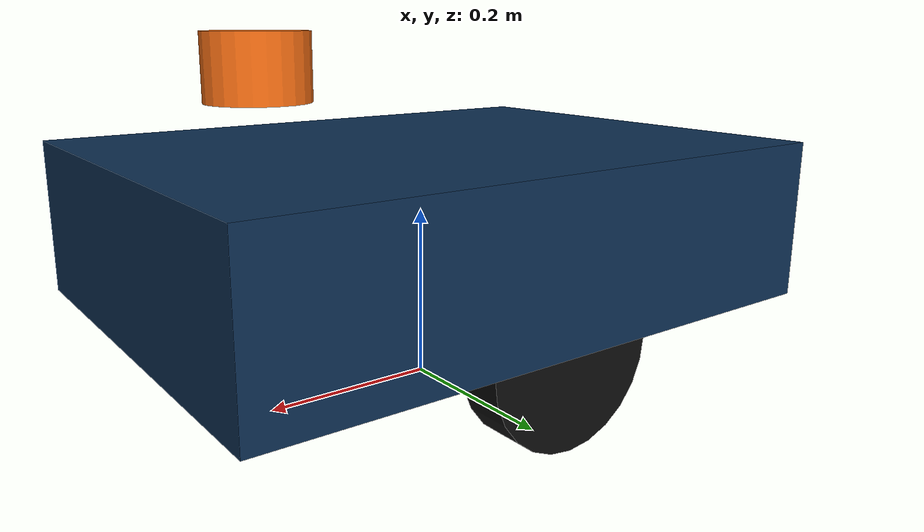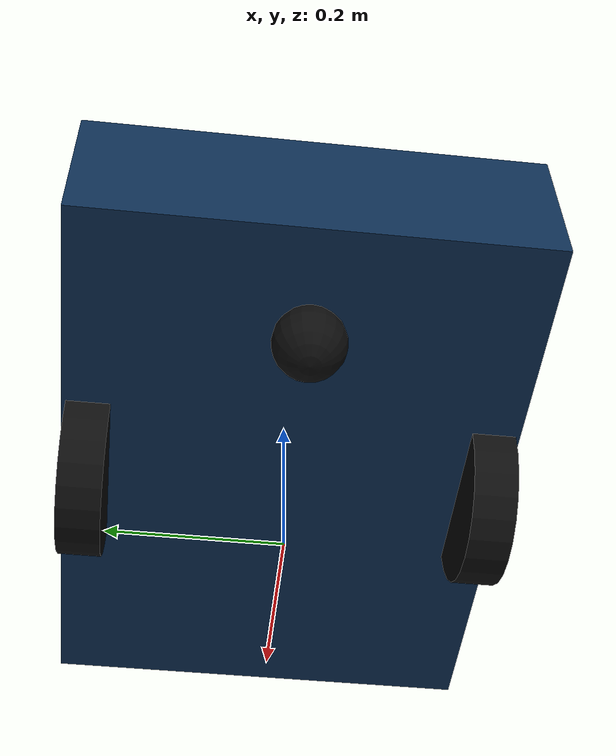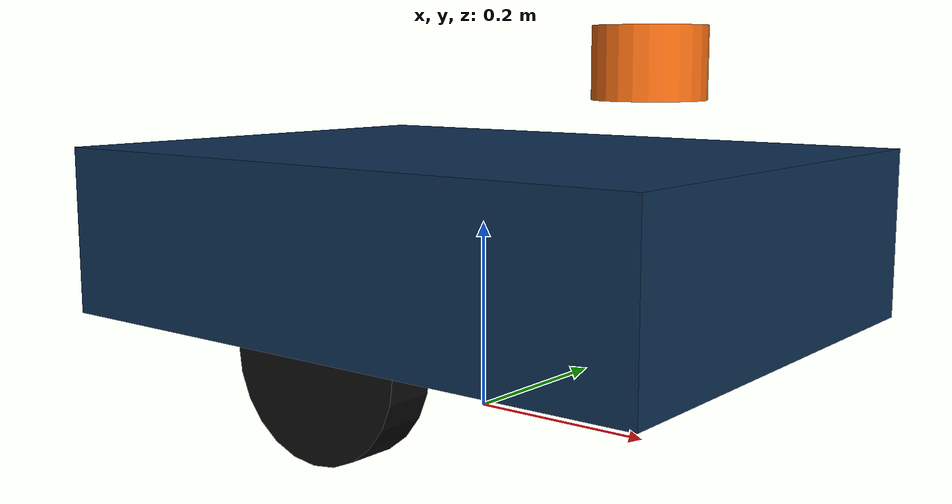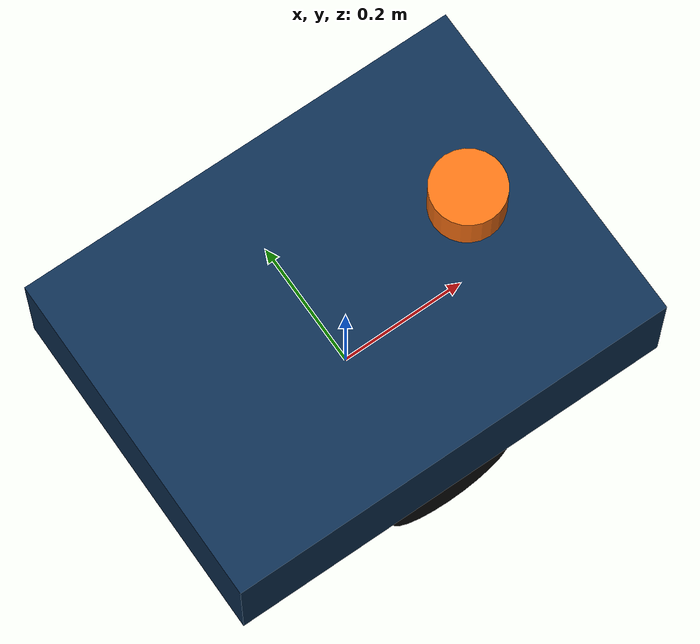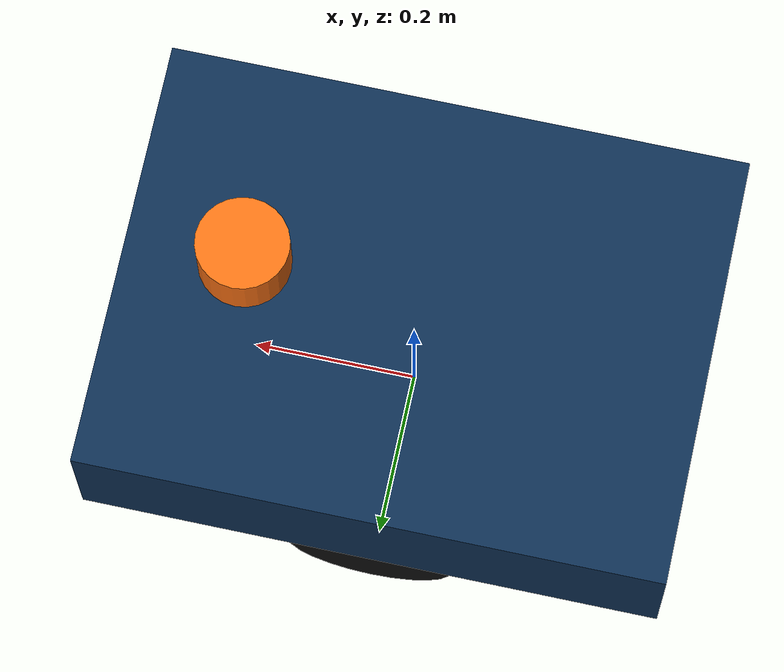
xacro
<?xml version="1.0"?>
<robot xmlns:xacro="http://www.ros.org/wiki/xacro" name="warehouse_robot">
  <xacro:property name="pi" value="3.141592653589793"/>
  <xacro:property name="base_length" value="0.70"/>
  <xacro:property name="base_width" value="0.52"/>
  <xacro:property name="base_height" value="0.18"/>
  <xacro:property name="wheel_radius" value="0.10"/>
  <xacro:property name="wheel_width" value="0.05"/>
  <xacro:property name="wheel_separation" value="0.46"/>

  <material name="navy"><color rgba="0.05 0.18 0.32 1"/></material>
  <material name="orange"><color rgba="1.0 0.45 0.08 1"/></material>
  <material name="dark"><color rgba="0.05 0.05 0.05 1"/></material>

  <link name="base_footprint"/>
  <joint name="base_footprint_joint" type="fixed">
    <parent link="base_footprint"/><child link="base_link"/>
    <origin xyz="0 0 ${wheel_radius}"/>
  </joint>

  <link name="base_link">
    <visual><origin xyz="0 0 ${base_height/2}"/><geometry><box size="${base_length} ${base_width} ${base_height}"/></geometry><material name="navy"/></visual>
    <collision><origin xyz="0 0 ${base_height/2}"/><geometry><box size="${base_length} ${base_width} ${base_height}"/></geometry></collision>
    <inertial><origin xyz="0 0 ${base_height/2}"/><mass value="36.0"/><inertia ixx="0.95" ixy="0" ixz="0" iyy="1.60" iyz="0" izz="2.25"/></inertial>
  </link>

  <xacro:macro name="drive_wheel" params="name y">
    <link name="${name}_wheel_link">
      <visual><geometry><cylinder radius="${wheel_radius}" length="${wheel_width}"/></geometry><material name="dark"/></visual>
      <collision><geometry><cylinder radius="${wheel_radius}" length="${wheel_width}"/></geometry></collision>
      <inertial><mass value="1.2"/><inertia ixx="0.006" ixy="0" ixz="0" iyy="0.006" iyz="0" izz="0.003"/></inertial>
    </link>
    <joint name="${name}_wheel_joint" type="continuous">
      <parent link="base_link"/><child link="${name}_wheel_link"/>
      <origin xyz="0 ${y} 0" rpy="${-pi/2} 0 0"/><axis xyz="0 0 1"/>
    </joint>
  </xacro:macro>
  <xacro:drive_wheel name="left" y="${wheel_separation/2}"/>
  <xacro:drive_wheel name="right" y="${-wheel_separation/2}"/>

  <link name="caster_link">
    <visual><geometry><sphere radius="0.04"/></geometry><material name="dark"/></visual>
    <collision><geometry><sphere radius="0.04"/></geometry></collision>
    <inertial><mass value="0.2"/><inertia ixx="0.0002" ixy="0" ixz="0" iyy="0.0002" iyz="0" izz="0.0002"/></inertial>
  </link>
  <joint name="caster_joint" type="fixed"><parent link="base_link"/><child link="caster_link"/><origin xyz="-0.25 0 -0.06"/></joint>

  <link name="lidar_link">
    <visual><geometry><cylinder radius="0.055" length="0.07"/></geometry><material name="orange"/></visual>
    <collision><geometry><cylinder radius="0.055" length="0.07"/></geometry></collision>
    <inertial><mass value="0.25"/><inertia ixx="0.001" ixy="0" ixz="0" iyy="0.001" iyz="0" izz="0.001"/></inertial>
  </link>
  <joint name="lidar_joint" type="fixed"><parent link="base_link"/><child link="lidar_link"/><origin xyz="0.20 0 0.27"/></joint>

  <link name="imu_link"><inertial><mass value="0.01"/><inertia ixx="0.00001" ixy="0" ixz="0" iyy="0.00001" iyz="0" izz="0.00001"/></inertial></link>
  <joint name="imu_joint" type="fixed"><parent link="base_link"/><child link="imu_link"/><origin xyz="0 0 0.15"/></joint>

  <gazebo reference="lidar_link">
    <sensor name="gpu_lidar" type="gpu_lidar">
      <topic>scan</topic><update_rate>10</update_rate><always_on>true</always_on>
      <lidar><scan><horizontal><samples>720</samples><resolution>1</resolution><min_angle>-${pi}</min_angle><max_angle>${pi}</max_angle></horizontal></scan><range><min>0.12</min><max>20.0</max><resolution>0.01</resolution></range></lidar>
    </sensor>
  </gazebo>
  <gazebo reference="imu_link"><sensor name="imu" type="imu"><topic>imu/data</topic><update_rate>100</update_rate><always_on>true</always_on></sensor></gazebo>

  <ros2_control name="GazeboSystem" type="system">
    <hardware><plugin>gz_ros2_control/GazeboSimSystem</plugin></hardware>
    <joint name="left_wheel_joint"><command_interface name="velocity"/><state_interface name="position"/><state_interface name="velocity"/></joint>
    <joint name="right_wheel_joint"><command_interface name="velocity"/><state_interface name="position"/><state_interface name="velocity"/></joint>
  </ros2_control>
  <gazebo><plugin filename="libgz_ros2_control-system.so" name="gz_ros2_control::GazeboSimROS2ControlPlugin"><parameters>$(find warehouse_robot_bringup)/config/controllers.yaml</parameters></plugin></gazebo>
</robot>
